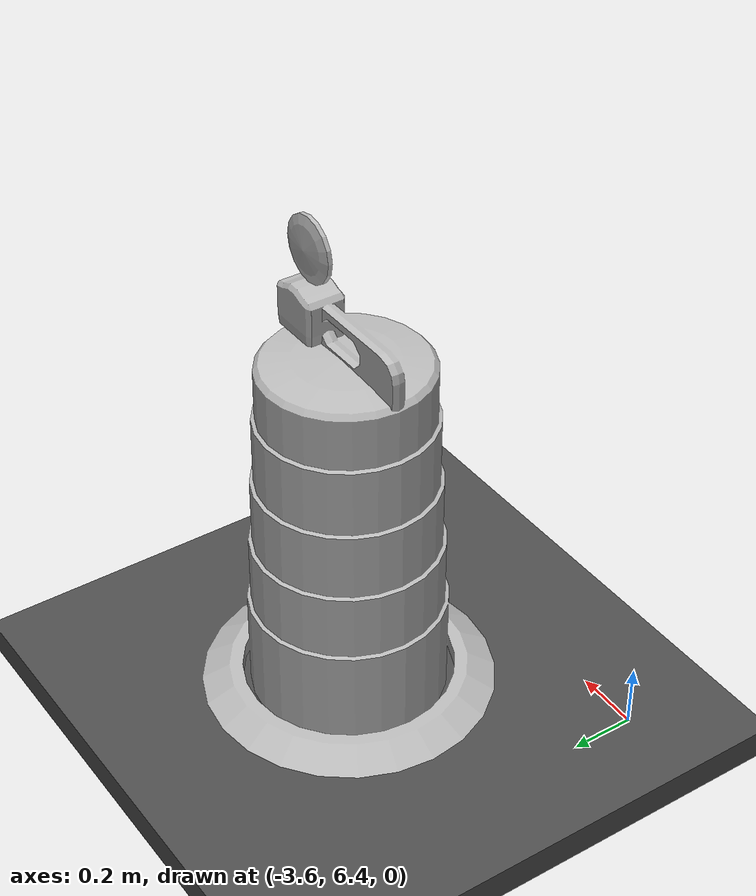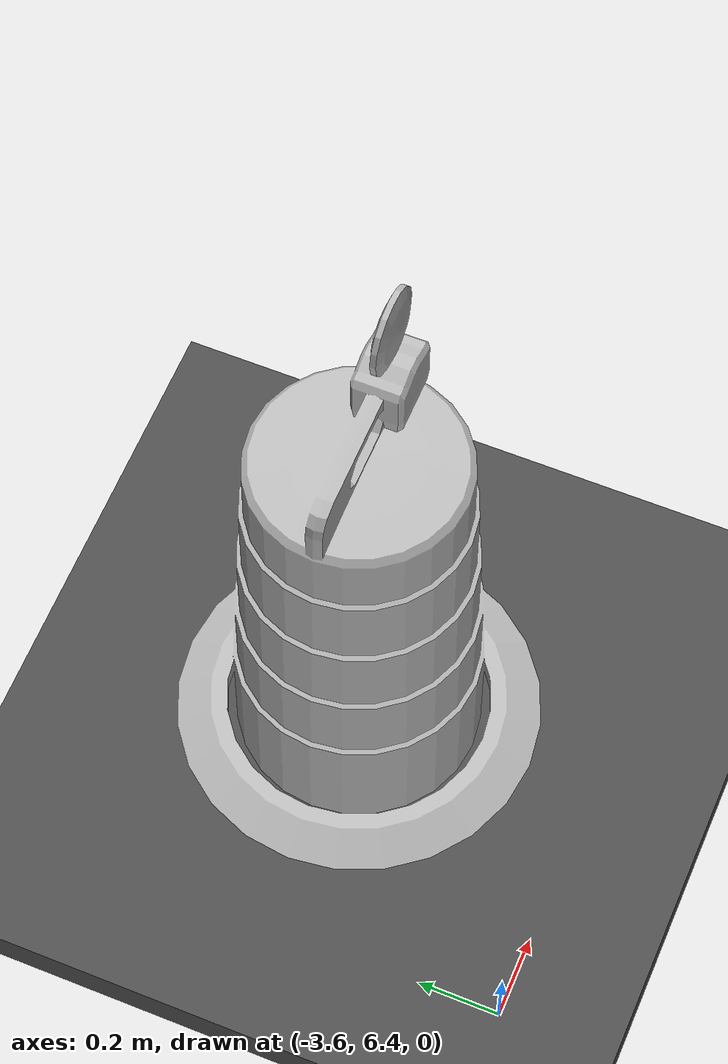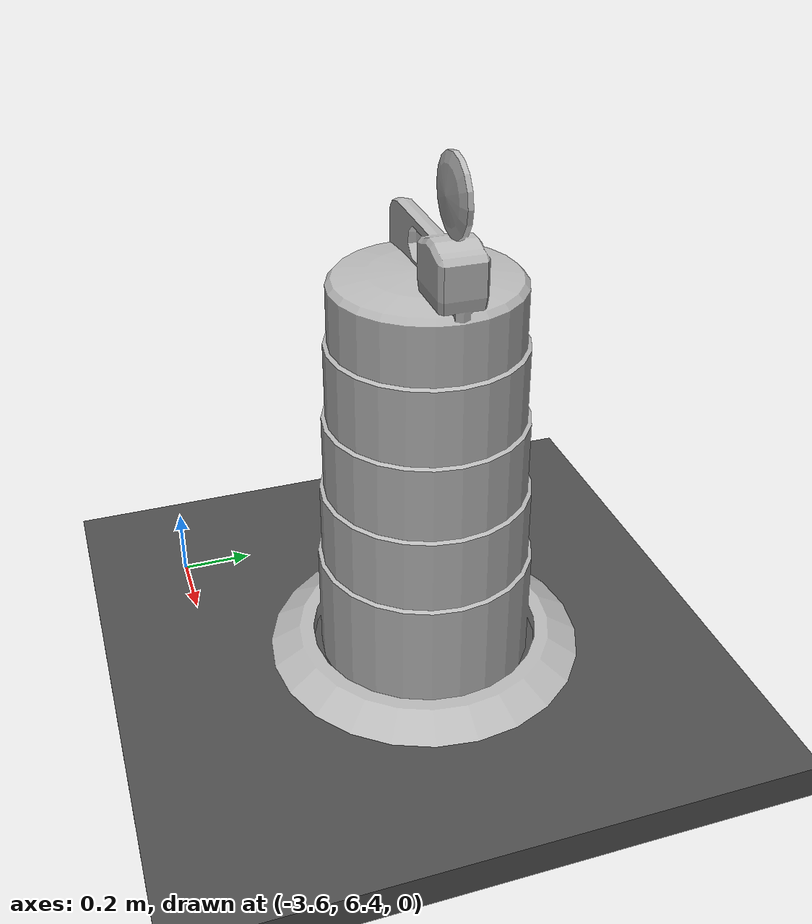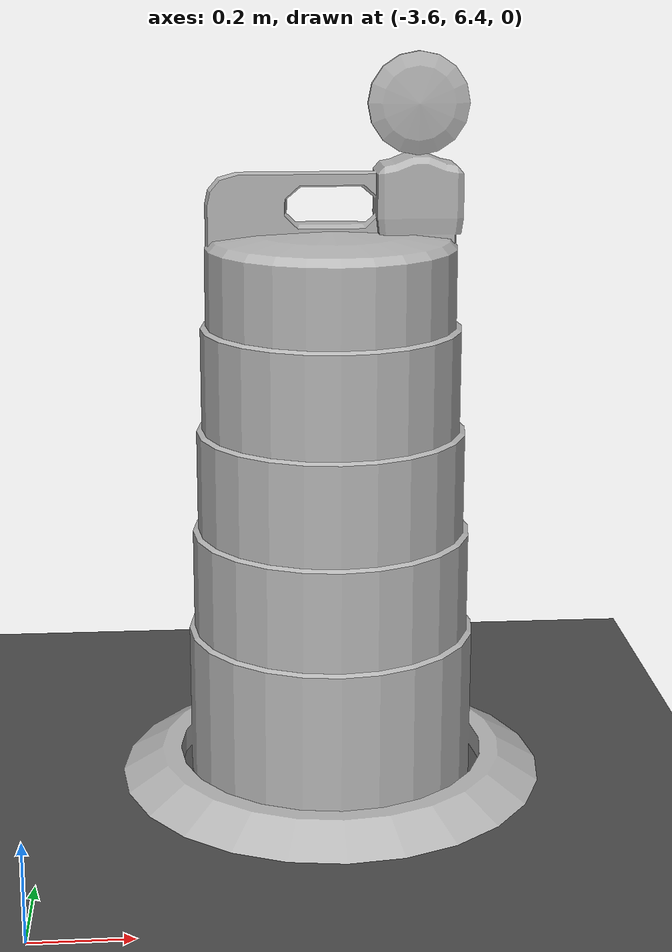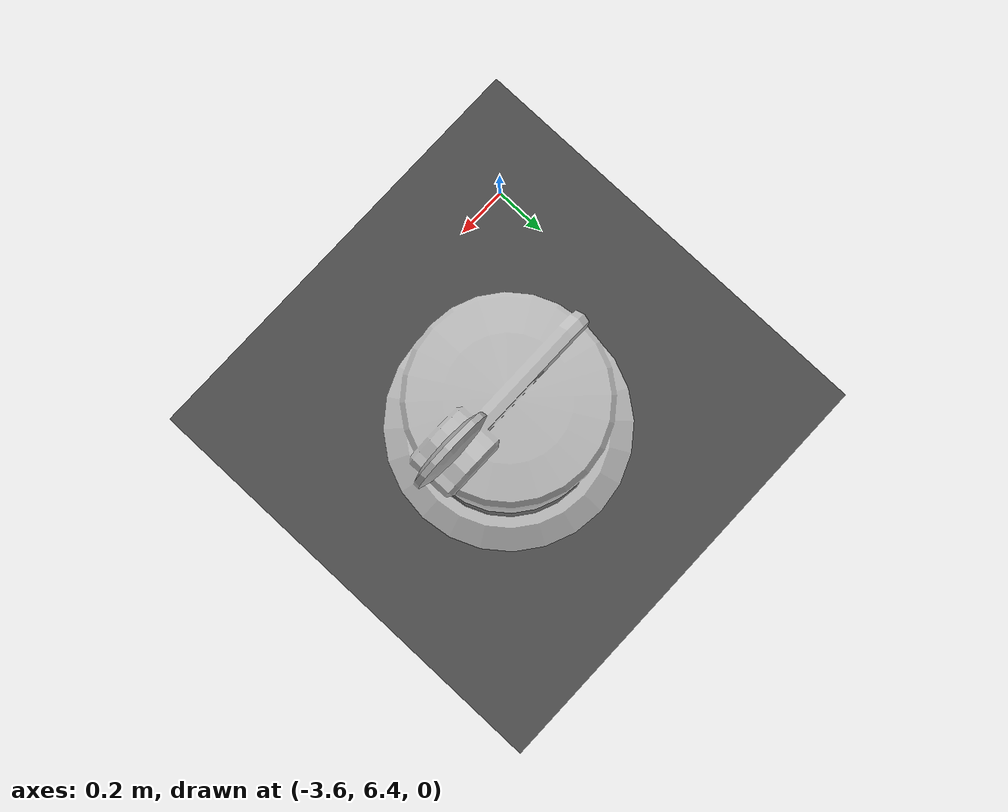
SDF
<sdf version='1.4'>
  <world name='default'>
    <light name='sun' type='directional'>
      <cast_shadows>1</cast_shadows>
      <pose>0 0 10 0 -0 0</pose>
      <diffuse>0.8 0.8 0.8 1</diffuse>
      <specular>0.2 0.2 0.2 1</specular>
      <attenuation>
        <range>1000</range>
        <constant>0.9</constant>
        <linear>0.01</linear>
        <quadratic>0.001</quadratic>
      </attenuation>
      <direction>-0.5 0.1 -0.9</direction>
    </light>
    <physics type='ode'>
      <max_step_size>0.01</max_step_size>
      <real_time_factor>1</real_time_factor>
      <real_time_update_rate>10</real_time_update_rate>
      <gravity>0 0 -9.8</gravity>
    </physics>
    <scene>
      <ambient>0.4 0.4 0.4 1</ambient>
      <background>0.7 0.7 0.7 1</background>
      <shadows>1</shadows>
    </scene>
    <model name='ground_plane'>
      <static>1</static>
      <link name='link'>
        <collision name='collision'>
          <geometry>
            <plane>
              <normal>0 0 1</normal>
              <size>100 100</size>
            </plane>
          </geometry>
          <surface>
            <friction>
              <ode>
                <mu>100</mu>
                <mu2>50</mu2>
              </ode>
            </friction>
            <bounce/>
            <contact>
              <ode/>
            </contact>
          </surface>
          <max_contacts>10</max_contacts>
        </collision>
        <visual name='visual'>
          <cast_shadows>0</cast_shadows>
          <geometry>
            <plane>
              <normal>0 0 1</normal>
              <size>100 100</size>
            </plane>
          </geometry>
          <material>
            <script>
              <uri>file://media/materials/scripts/gazebo.material</uri>
              <name>Gazebo/Grey</name>
            </script>
          </material>
        </visual>
        <velocity_decay>
          <linear>0</linear>
          <angular>0</angular>
        </velocity_decay>
        <self_collide>0</self_collide>
        <kinematic>0</kinematic>
        <gravity>1</gravity>
      </link>
    </model>
    <model name='Construction Barrel_7'>
      <link name='link'>
        <inertial>
          <pose>0 0 0.4 0 -0 0</pose>
          <mass>500</mass>
          <inertia>
            <ixx>51.2096</ixx>
            <iyy>51.2096</iyy>
            <izz>25</izz>
            <ixy>0</ixy>
            <ixz>0</ixz>
            <iyz>0</iyz>
          </inertia>
        </inertial>
        <collision name='collision'>
          <geometry>
            <mesh>
              <uri>model://construction_barrel/meshes/construction_barrel.dae</uri>
            </mesh>
          </geometry>
          <max_contacts>10</max_contacts>
          <surface>
            <bounce/>
            <friction>
              <ode/>
            </friction>
            <contact>
              <ode/>
            </contact>
          </surface>
        </collision>
        <visual name='visual'>
          <geometry>
            <mesh>
              <uri>model://construction_barrel/meshes/construction_barrel.dae</uri>
            </mesh>
          </geometry>
        </visual>
        <velocity_decay>
          <linear>0</linear>
          <angular>0</angular>
        </velocity_decay>
        <self_collide>0</self_collide>
        <kinematic>0</kinematic>
        <gravity>1</gravity>
      </link>
      <pose>-3 7 0 0 -0 0</pose>
      <static>0</static>
    </model>
    <model name='asphalt_plane'>
      <static>1</static>
      <link name='link'>
        <collision name='collision'>
          <geometry>
            <box>
              <size>20 20 0.1</size>
            </box>
          </geometry>
          <max_contacts>10</max_contacts>
          <surface>
            <bounce/>
            <friction>
              <ode/>
            </friction>
            <contact>
              <ode/>
            </contact>
          </surface>
        </collision>
        <visual name='visual'>
          <cast_shadows>0</cast_shadows>
          <geometry>
            <box>
              <size>20 20 0.1</size>
            </box>
          </geometry>
          <material>
            <script>
              <uri>model://asphalt_plane/materials/scripts</uri>
              <uri>model://asphalt_plane/materials/textures</uri>
              <name>vrc/asphalt</name>
            </script>
          </material>
        </visual>
        <velocity_decay>
          <linear>0</linear>
          <angular>0</angular>
        </velocity_decay>
        <self_collide>0</self_collide>
        <kinematic>0</kinematic>
        <gravity>1</gravity>
      </link>
      <pose>-0.464139 0 0 0 -0 0</pose>
    </model>
   </world>
</sdf>
